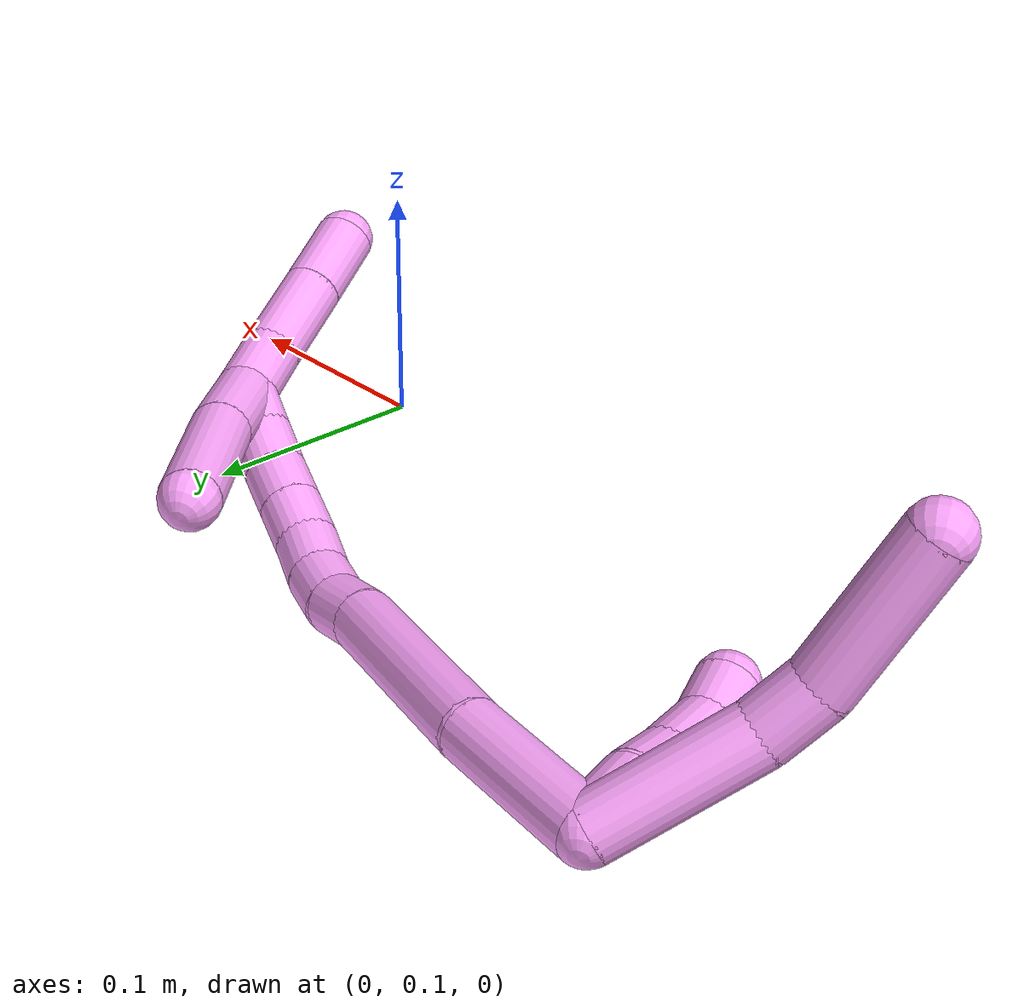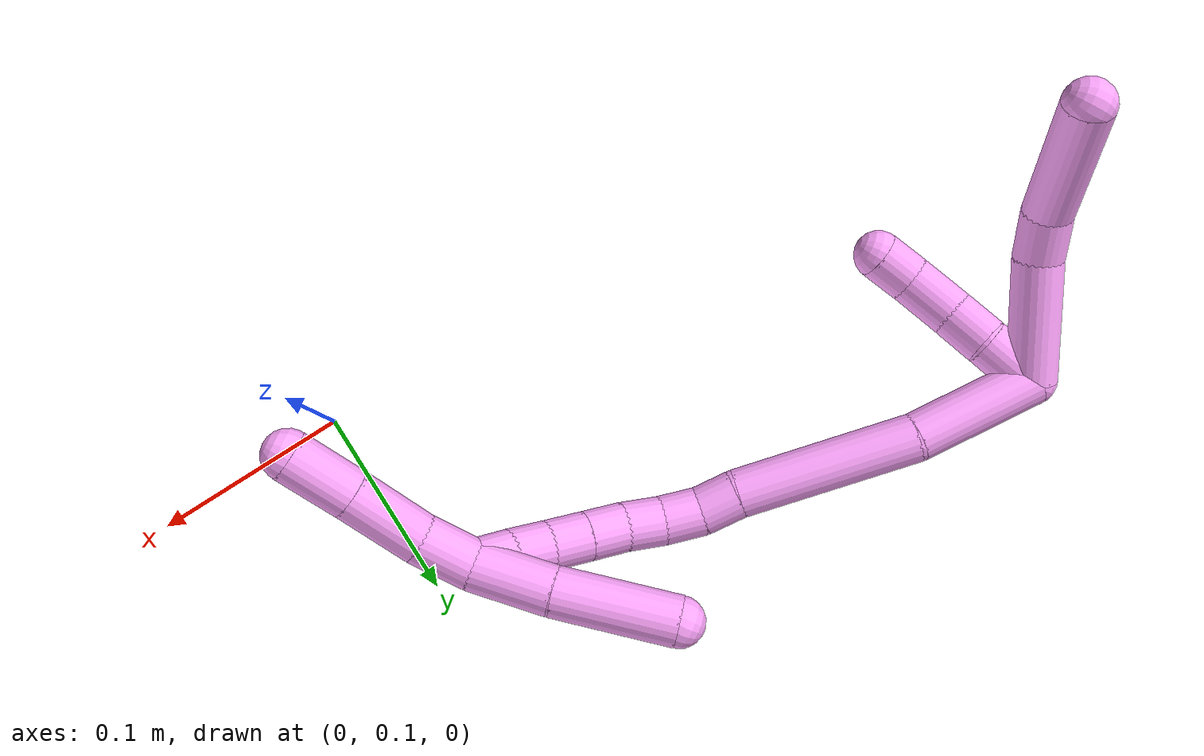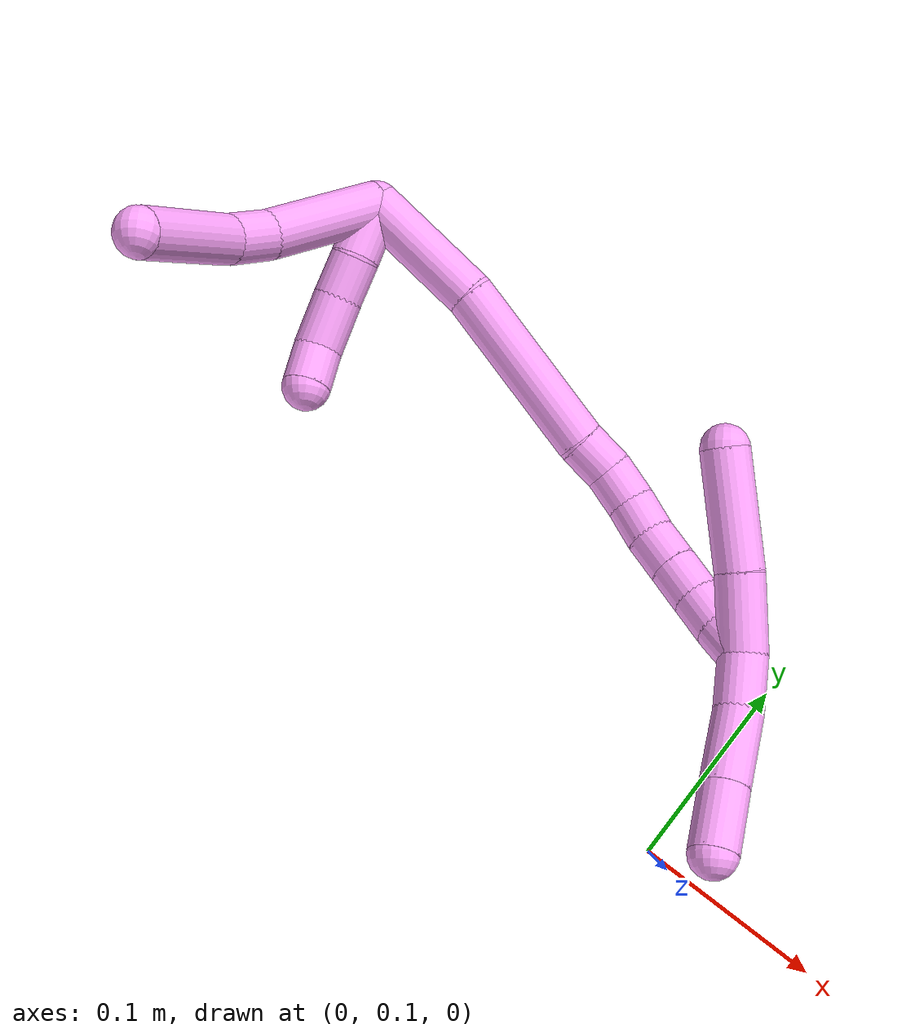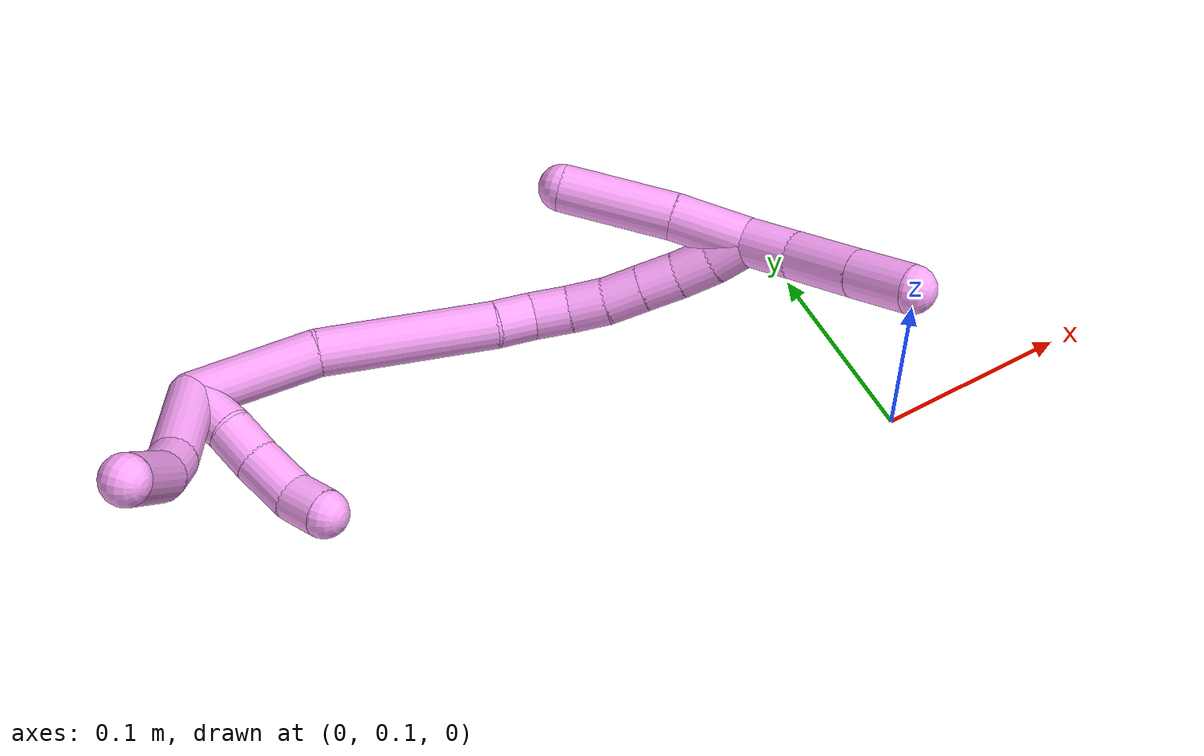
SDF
<sdf version="1.7">
 <world name="default">
  <model name="4">
   <static>0</static>
   <link name="4">
    <collision name="collision-cylinder-e_1_2_8">
     <pose>-0.027128 -0.000228 -0.016118 3.12746 -1.03464 -3.11675</pose>
     <geometry><cylinder><radius>0.0125</radius><length>0.063111</length></cylinder></geometry>
     <surface>
      <friction><ode><mu>1.16</mu><mu2>1.16</mu2><slip1>0</slip1><slip2>0</slip2></ode></friction>
      <contact><ode><kp>1e+06</kp><kd>1</kd><max_vel>0</max_vel><min_depth>0.001</min_depth></ode></contact>
     </surface>
    </collision>
    <visual name="visual-cylinder-e_1_2_8">
     <pose>-0.027128 -0.000228 -0.016118 3.12746 -1.03464 -3.11675</pose>
     <geometry><cylinder><radius>0.0125</radius><length>0.063111</length></cylinder></geometry>
     <material><ambient>1 0.65098 0.996078 1</ambient></material>
    </visual>
    <collision name="collision-cylinder-e_2_8_9">
     <pose>-0.064783 -0.003379 -0.037732 2.65274 -1.03683 -2.31725</pose>
     <geometry><cylinder><radius>0.0125</radius><length>0.024461</length></cylinder></geometry>
     <surface>
      <friction><ode><mu>1.16</mu><mu2>1.16</mu2><slip1>0</slip1><slip2>0</slip2></ode></friction>
      <contact><ode><kp>1e+06</kp><kd>1</kd><max_vel>0</max_vel><min_depth>0.001</min_depth></ode></contact>
     </surface>
    </collision>
    <visual name="visual-cylinder-e_2_8_9">
     <pose>-0.064783 -0.003379 -0.037732 2.65274 -1.03683 -2.31725</pose>
     <geometry><cylinder><radius>0.0125</radius><length>0.024461</length></cylinder></geometry>
     <material><ambient>1 0.65098 0.996078 1</ambient></material>
    </visual>
    <collision name="collision-cylinder-e_3_9_6">
     <pose>-0.099444 -0.022109 -0.055147 2.21689 -0.883757 -1.51872</pose>
     <geometry><cylinder><radius>0.0125</radius><length>0.062428</length></cylinder></geometry>
     <surface>
      <friction><ode><mu>1.16</mu><mu2>1.16</mu2><slip1>0</slip1><slip2>0</slip2></ode></friction>
      <contact><ode><kp>1e+06</kp><kd>1</kd><max_vel>0</max_vel><min_depth>0.001</min_depth></ode></contact>
     </surface>
    </collision>
    <visual name="visual-cylinder-e_3_9_6">
     <pose>-0.099444 -0.022109 -0.055147 2.21689 -0.883757 -1.51872</pose>
     <geometry><cylinder><radius>0.0125</radius><length>0.062428</length></cylinder></geometry>
     <material><ambient>1 0.65098 0.996078 1</ambient></material>
    </visual>
    <collision name="collision-cylinder-e_1_2_10">
     <pose>-0.002747 0.00441 -0.013715 -2.83047 -0.188382 1.08433</pose>
     <geometry><cylinder><radius>0.0125</radius><length>0.029333</length></cylinder></geometry>
     <surface>
      <friction><ode><mu>1.16</mu><mu2>1.16</mu2><slip1>0</slip1><slip2>0</slip2></ode></friction>
      <contact><ode><kp>1e+06</kp><kd>1</kd><max_vel>0</max_vel><min_depth>0.001</min_depth></ode></contact>
     </surface>
    </collision>
    <visual name="visual-cylinder-e_1_2_10">
     <pose>-0.002747 0.00441 -0.013715 -2.83047 -0.188382 1.08433</pose>
     <geometry><cylinder><radius>0.0125</radius><length>0.029333</length></cylinder></geometry>
     <material><ambient>1 0.65098 0.996078 1</ambient></material>
    </visual>
    <collision name="collision-cylinder-e_2_10_11">
     <pose>-0.007266 0.013854 -0.036994 -2.65715 -0.162569 0.636982</pose>
     <geometry><cylinder><radius>0.0125</radius><length>0.021904</length></cylinder></geometry>
     <surface>
      <friction><ode><mu>1.16</mu><mu2>1.16</mu2><slip1>0</slip1><slip2>0</slip2></ode></friction>
      <contact><ode><kp>1e+06</kp><kd>1</kd><max_vel>0</max_vel><min_depth>0.001</min_depth></ode></contact>
     </surface>
    </collision>
    <visual name="visual-cylinder-e_2_10_11">
     <pose>-0.007266 0.013854 -0.036994 -2.65715 -0.162569 0.636982</pose>
     <geometry><cylinder><radius>0.0125</radius><length>0.021904</length></cylinder></geometry>
     <material><ambient>1 0.65098 0.996078 1</ambient></material>
    </visual>
    <collision name="collision-cylinder-e_3_11_12">
     <pose>-0.011236 0.024171 -0.059287 -2.74811 -0.158112 0.756621</pose>
     <geometry><cylinder><radius>0.0125</radius><length>0.027912</length></cylinder></geometry>
     <surface>
      <friction><ode><mu>1.16</mu><mu2>1.16</mu2><slip1>0</slip1><slip2>0</slip2></ode></friction>
      <contact><ode><kp>1e+06</kp><kd>1</kd><max_vel>0</max_vel><min_depth>0.001</min_depth></ode></contact>
     </surface>
    </collision>
    <visual name="visual-cylinder-e_3_11_12">
     <pose>-0.011236 0.024171 -0.059287 -2.74811 -0.158112 0.756621</pose>
     <geometry><cylinder><radius>0.0125</radius><length>0.027912</length></cylinder></geometry>
     <material><ambient>1 0.65098 0.996078 1</ambient></material>
    </visual>
    <collision name="collision-cylinder-e_4_12_5">
     <pose>-0.015136 0.029976 -0.082288 -3.09097 -0.164096 2.54431</pose>
     <geometry><cylinder><radius>0.0125</radius><length>0.020851</length></cylinder></geometry>
     <surface>
      <friction><ode><mu>1.16</mu><mu2>1.16</mu2><slip1>0</slip1><slip2>0</slip2></ode></friction>
      <contact><ode><kp>1e+06</kp><kd>1</kd><max_vel>0</max_vel><min_depth>0.001</min_depth></ode></contact>
     </surface>
    </collision>
    <visual name="visual-cylinder-e_4_12_5">
     <pose>-0.015136 0.029976 -0.082288 -3.09097 -0.164096 2.54431</pose>
     <geometry><cylinder><radius>0.0125</radius><length>0.020851</length></cylinder></geometry>
     <material><ambient>1 0.65098 0.996078 1</ambient></material>
    </visual>
    <collision name="collision-cylinder-e_1_2_13">
     <pose>0.024987 -0.006396 -0.020879 2.84434 0.85259 2.50465</pose>
     <geometry><cylinder><radius>0.0125</radius><length>0.066368</length></cylinder></geometry>
     <surface>
      <friction><ode><mu>1.16</mu><mu2>1.16</mu2><slip1>0</slip1><slip2>0</slip2></ode></friction>
      <contact><ode><kp>1e+06</kp><kd>1</kd><max_vel>0</max_vel><min_depth>0.001</min_depth></ode></contact>
     </surface>
    </collision>
    <visual name="visual-cylinder-e_1_2_13">
     <pose>0.024987 -0.006396 -0.020879 2.84434 0.85259 2.50465</pose>
     <geometry><cylinder><radius>0.0125</radius><length>0.066368</length></cylinder></geometry>
     <material><ambient>1 0.65098 0.996078 1</ambient></material>
    </visual>
    <collision name="collision-cylinder-e_2_13_14">
     <pose>0.082445 -0.014848 -0.074527 3.07892 0.779827 2.98934</pose>
     <geometry><cylinder><radius>0.0125</radius><length>0.092356</length></cylinder></geometry>
     <surface>
      <friction><ode><mu>1.16</mu><mu2>1.16</mu2><slip1>0</slip1><slip2>0</slip2></ode></friction>
      <contact><ode><kp>1e+06</kp><kd>1</kd><max_vel>0</max_vel><min_depth>0.001</min_depth></ode></contact>
     </surface>
    </collision>
    <visual name="visual-cylinder-e_2_13_14">
     <pose>0.082445 -0.014848 -0.074527 3.07892 0.779827 2.98934</pose>
     <geometry><cylinder><radius>0.0125</radius><length>0.092356</length></cylinder></geometry>
     <material><ambient>1 0.65098 0.996078 1</ambient></material>
    </visual>
    <collision name="collision-cylinder-e_3_14_15">
     <pose>0.123142 -0.017268 -0.113404 3.08207 0.931391 3.02325</pose>
     <geometry><cylinder><radius>0.0125</radius><length>0.020506</length></cylinder></geometry>
     <surface>
      <friction><ode><mu>1.16</mu><mu2>1.16</mu2><slip1>0</slip1><slip2>0</slip2></ode></friction>
      <contact><ode><kp>1e+06</kp><kd>1</kd><max_vel>0</max_vel><min_depth>0.001</min_depth></ode></contact>
     </surface>
    </collision>
    <visual name="visual-cylinder-e_3_14_15">
     <pose>0.123142 -0.017268 -0.113404 3.08207 0.931391 3.02325</pose>
     <geometry><cylinder><radius>0.0125</radius><length>0.020506</length></cylinder></geometry>
     <material><ambient>1 0.65098 0.996078 1</ambient></material>
    </visual>
    <collision name="collision-cylinder-e_4_15_16">
     <pose>0.137598 -0.019022 -0.127453 2.96834 0.657719 2.64321</pose>
     <geometry><cylinder><radius>0.0125</radius><length>0.020377</length></cylinder></geometry>
     <surface>
      <friction><ode><mu>1.16</mu><mu2>1.16</mu2><slip1>0</slip1><slip2>0</slip2></ode></friction>
      <contact><ode><kp>1e+06</kp><kd>1</kd><max_vel>0</max_vel><min_depth>0.001</min_depth></ode></contact>
     </surface>
    </collision>
    <visual name="visual-cylinder-e_4_15_16">
     <pose>0.137598 -0.019022 -0.127453 2.96834 0.657719 2.64321</pose>
     <geometry><cylinder><radius>0.0125</radius><length>0.020377</length></cylinder></geometry>
     <material><ambient>1 0.65098 0.996078 1</ambient></material>
    </visual>
    <collision name="collision-cylinder-e_5_16_17">
     <pose>0.148606 -0.022904 -0.14382 2.854 0.498286 2.10683</pose>
     <geometry><cylinder><radius>0.0125</radius><length>0.020003</length></cylinder></geometry>
     <surface>
      <friction><ode><mu>1.16</mu><mu2>1.16</mu2><slip1>0</slip1><slip2>0</slip2></ode></friction>
      <contact><ode><kp>1e+06</kp><kd>1</kd><max_vel>0</max_vel><min_depth>0.001</min_depth></ode></contact>
     </surface>
    </collision>
    <visual name="visual-cylinder-e_5_16_17">
     <pose>0.148606 -0.022904 -0.14382 2.854 0.498286 2.10683</pose>
     <geometry><cylinder><radius>0.0125</radius><length>0.020003</length></cylinder></geometry>
     <material><ambient>1 0.65098 0.996078 1</ambient></material>
    </visual>
    <collision name="collision-cylinder-e_6_17_18">
     <pose>0.158124 -0.029216 -0.160205 2.69417 0.492504 1.67025</pose>
     <geometry><cylinder><radius>0.0125</radius><length>0.020041</length></cylinder></geometry>
     <surface>
      <friction><ode><mu>1.16</mu><mu2>1.16</mu2><slip1>0</slip1><slip2>0</slip2></ode></friction>
      <contact><ode><kp>1e+06</kp><kd>1</kd><max_vel>0</max_vel><min_depth>0.001</min_depth></ode></contact>
     </surface>
    </collision>
    <visual name="visual-cylinder-e_6_17_18">
     <pose>0.158124 -0.029216 -0.160205 2.69417 0.492504 1.67025</pose>
     <geometry><cylinder><radius>0.0125</radius><length>0.020041</length></cylinder></geometry>
     <material><ambient>1 0.65098 0.996078 1</ambient></material>
    </visual>
    <collision name="collision-cylinder-e_7_18_19">
     <pose>0.16759 -0.036782 -0.176145 2.70272 0.492268 1.68957</pose>
     <geometry><cylinder><radius>0.0125</radius><length>0.020006</length></cylinder></geometry>
     <surface>
      <friction><ode><mu>1.16</mu><mu2>1.16</mu2><slip1>0</slip1><slip2>0</slip2></ode></friction>
      <contact><ode><kp>1e+06</kp><kd>1</kd><max_vel>0</max_vel><min_depth>0.001</min_depth></ode></contact>
     </surface>
    </collision>
    <visual name="visual-cylinder-e_7_18_19">
     <pose>0.16759 -0.036782 -0.176145 2.70272 0.492268 1.68957</pose>
     <geometry><cylinder><radius>0.0125</radius><length>0.020006</length></cylinder></geometry>
     <material><ambient>1 0.65098 0.996078 1</ambient></material>
    </visual>
    <collision name="collision-cylinder-e_8_19_20">
     <pose>0.176429 -0.045078 -0.192105 2.62329 0.420783 1.35618</pose>
     <geometry><cylinder><radius>0.0125</radius><length>0.020129</length></cylinder></geometry>
     <surface>
      <friction><ode><mu>1.16</mu><mu2>1.16</mu2><slip1>0</slip1><slip2>0</slip2></ode></friction>
      <contact><ode><kp>1e+06</kp><kd>1</kd><max_vel>0</max_vel><min_depth>0.001</min_depth></ode></contact>
     </surface>
    </collision>
    <visual name="visual-cylinder-e_8_19_20">
     <pose>0.176429 -0.045078 -0.192105 2.62329 0.420783 1.35618</pose>
     <geometry><cylinder><radius>0.0125</radius><length>0.020129</length></cylinder></geometry>
     <material><ambient>1 0.65098 0.996078 1</ambient></material>
    </visual>
    <collision name="collision-cylinder-e_9_20_1">
     <pose>0.184014 -0.055422 -0.207604 2.48517 0.350931 0.96003</pose>
     <geometry><cylinder><radius>0.0125</radius><length>0.020215</length></cylinder></geometry>
     <surface>
      <friction><ode><mu>1.16</mu><mu2>1.16</mu2><slip1>0</slip1><slip2>0</slip2></ode></friction>
      <contact><ode><kp>1e+06</kp><kd>1</kd><max_vel>0</max_vel><min_depth>0.001</min_depth></ode></contact>
     </surface>
    </collision>
    <visual name="visual-cylinder-e_9_20_1">
     <pose>0.184014 -0.055422 -0.207604 2.48517 0.350931 0.96003</pose>
     <geometry><cylinder><radius>0.0125</radius><length>0.020215</length></cylinder></geometry>
     <material><ambient>1 0.65098 0.996078 1</ambient></material>
    </visual>
    <collision name="collision-cylinder-e_1_1_21">
     <pose>0.18681 -0.061063 -0.229274 -3.13089 -0.047925 2.70212</pose>
     <geometry><cylinder><radius>0.0125</radius><length>0.028336</length></cylinder></geometry>
     <surface>
      <friction><ode><mu>1.16</mu><mu2>1.16</mu2><slip1>0</slip1><slip2>0</slip2></ode></friction>
      <contact><ode><kp>1e+06</kp><kd>1</kd><max_vel>0</max_vel><min_depth>0.001</min_depth></ode></contact>
     </surface>
    </collision>
    <visual name="visual-cylinder-e_1_1_21">
     <pose>0.18681 -0.061063 -0.229274 -3.13089 -0.047925 2.70212</pose>
     <geometry><cylinder><radius>0.0125</radius><length>0.028336</length></cylinder></geometry>
     <material><ambient>1 0.65098 0.996078 1</ambient></material>
    </visual>
    <collision name="collision-cylinder-e_2_21_22">
     <pose>0.182151 -0.062367 -0.262301 3.06462 -0.207222 -2.43232</pose>
     <geometry><cylinder><radius>0.0125</radius><length>0.038694</length></cylinder></geometry>
     <surface>
      <friction><ode><mu>1.16</mu><mu2>1.16</mu2><slip1>0</slip1><slip2>0</slip2></ode></friction>
      <contact><ode><kp>1e+06</kp><kd>1</kd><max_vel>0</max_vel><min_depth>0.001</min_depth></ode></contact>
     </surface>
    </collision>
    <visual name="visual-cylinder-e_2_21_22">
     <pose>0.182151 -0.062367 -0.262301 3.06462 -0.207222 -2.43232</pose>
     <geometry><cylinder><radius>0.0125</radius><length>0.038694</length></cylinder></geometry>
     <material><ambient>1 0.65098 0.996078 1</ambient></material>
    </visual>
    <collision name="collision-cylinder-e_3_22_4">
     <pose>0.175108 -0.065046 -0.29733 3.06601 -0.186835 -2.37445</pose>
     <geometry><cylinder><radius>0.0125</radius><length>0.032971</length></cylinder></geometry>
     <surface>
      <friction><ode><mu>1.16</mu><mu2>1.16</mu2><slip1>0</slip1><slip2>0</slip2></ode></friction>
      <contact><ode><kp>1e+06</kp><kd>1</kd><max_vel>0</max_vel><min_depth>0.001</min_depth></ode></contact>
     </surface>
    </collision>
    <visual name="visual-cylinder-e_3_22_4">
     <pose>0.175108 -0.065046 -0.29733 3.06601 -0.186835 -2.37445</pose>
     <geometry><cylinder><radius>0.0125</radius><length>0.032971</length></cylinder></geometry>
     <material><ambient>1 0.65098 0.996078 1</ambient></material>
    </visual>
    <collision name="collision-cylinder-e_1_1_23">
     <pose>0.183225 -0.06534 -0.196158 0.214176 -0.216279 -0.02334</pose>
     <geometry><cylinder><radius>0.0125</radius><length>0.039742</length></cylinder></geometry>
     <surface>
      <friction><ode><mu>1.16</mu><mu2>1.16</mu2><slip1>0</slip1><slip2>0</slip2></ode></friction>
      <contact><ode><kp>1e+06</kp><kd>1</kd><max_vel>0</max_vel><min_depth>0.001</min_depth></ode></contact>
     </surface>
    </collision>
    <visual name="visual-cylinder-e_1_1_23">
     <pose>0.183225 -0.06534 -0.196158 0.214176 -0.216279 -0.02334</pose>
     <geometry><cylinder><radius>0.0125</radius><length>0.039742</length></cylinder></geometry>
     <material><ambient>1 0.65098 0.996078 1</ambient></material>
    </visual>
    <collision name="collision-cylinder-e_2_23_3">
     <pose>0.170702 -0.074148 -0.1486 0.16235 -0.277664 -0.022734</pose>
     <geometry><cylinder><radius>0.0125</radius><length>0.060258</length></cylinder></geometry>
     <surface>
      <friction><ode><mu>1.16</mu><mu2>1.16</mu2><slip1>0</slip1><slip2>0</slip2></ode></friction>
      <contact><ode><kp>1e+06</kp><kd>1</kd><max_vel>0</max_vel><min_depth>0.001</min_depth></ode></contact>
     </surface>
    </collision>
    <visual name="visual-cylinder-e_2_23_3">
     <pose>0.170702 -0.074148 -0.1486 0.16235 -0.277664 -0.022734</pose>
     <geometry><cylinder><radius>0.0125</radius><length>0.060258</length></cylinder></geometry>
     <material><ambient>1 0.65098 0.996078 1</ambient></material>
    </visual>
    <collision name="collision-sphere-3">
     <pose>0.162443 -0.078832 -0.120006 0 -0 0</pose>
     <geometry><sphere><radius>0.0125</radius></sphere></geometry>
     <surface>
      <friction><ode><mu>1.16</mu><mu2>1.16</mu2><slip1>0</slip1><slip2>0</slip2></ode></friction>
      <contact><ode><kp>1e+06</kp><kd>1</kd><max_vel>0</max_vel><min_depth>0.001</min_depth></ode></contact>
     </surface>
    </collision>
    <visual name="visual-sphere-3">
     <pose>0.162443 -0.078832 -0.120006 0 -0 0</pose>
     <geometry><sphere><radius>0.0125</radius></sphere></geometry>
     <material><ambient>1 0.65098 0.996078 1</ambient></material>
    </visual>
    <collision name="collision-sphere-23">
     <pose>0.17896 -0.069465 -0.177194 0 -0 0</pose>
     <geometry><sphere><radius>0.0125</radius></sphere></geometry>
     <surface>
      <friction><ode><mu>1.16</mu><mu2>1.16</mu2><slip1>0</slip1><slip2>0</slip2></ode></friction>
      <contact><ode><kp>1e+06</kp><kd>1</kd><max_vel>0</max_vel><min_depth>0.001</min_depth></ode></contact>
     </surface>
    </collision>
    <visual name="visual-sphere-23">
     <pose>0.17896 -0.069465 -0.177194 0 -0 0</pose>
     <geometry><sphere><radius>0.0125</radius></sphere></geometry>
     <material><ambient>1 0.65098 0.996078 1</ambient></material>
    </visual>
    <collision name="collision-sphere-4">
     <pose>0.172046 -0.06627 -0.313483 0 -0 0</pose>
     <geometry><sphere><radius>0.0125</radius></sphere></geometry>
     <surface>
      <friction><ode><mu>1.16</mu><mu2>1.16</mu2><slip1>0</slip1><slip2>0</slip2></ode></friction>
      <contact><ode><kp>1e+06</kp><kd>1</kd><max_vel>0</max_vel><min_depth>0.001</min_depth></ode></contact>
     </surface>
    </collision>
    <visual name="visual-sphere-4">
     <pose>0.172046 -0.06627 -0.313483 0 -0 0</pose>
     <geometry><sphere><radius>0.0125</radius></sphere></geometry>
     <material><ambient>1 0.65098 0.996078 1</ambient></material>
    </visual>
    <collision name="collision-sphere-22">
     <pose>0.178171 -0.063823 -0.281178 0 -0 0</pose>
     <geometry><sphere><radius>0.0125</radius></sphere></geometry>
     <surface>
      <friction><ode><mu>1.16</mu><mu2>1.16</mu2><slip1>0</slip1><slip2>0</slip2></ode></friction>
      <contact><ode><kp>1e+06</kp><kd>1</kd><max_vel>0</max_vel><min_depth>0.001</min_depth></ode></contact>
     </surface>
    </collision>
    <visual name="visual-sphere-22">
     <pose>0.178171 -0.063823 -0.281178 0 -0 0</pose>
     <geometry><sphere><radius>0.0125</radius></sphere></geometry>
     <material><ambient>1 0.65098 0.996078 1</ambient></material>
    </visual>
    <collision name="collision-sphere-21">
     <pose>0.186131 -0.060912 -0.243424 0 -0 0</pose>
     <geometry><sphere><radius>0.0125</radius></sphere></geometry>
     <surface>
      <friction><ode><mu>1.16</mu><mu2>1.16</mu2><slip1>0</slip1><slip2>0</slip2></ode></friction>
      <contact><ode><kp>1e+06</kp><kd>1</kd><max_vel>0</max_vel><min_depth>0.001</min_depth></ode></contact>
     </surface>
    </collision>
    <visual name="visual-sphere-21">
     <pose>0.186131 -0.060912 -0.243424 0 -0 0</pose>
     <geometry><sphere><radius>0.0125</radius></sphere></geometry>
     <material><ambient>1 0.65098 0.996078 1</ambient></material>
    </visual>
    <collision name="collision-sphere-1">
     <pose>0.187489 -0.061215 -0.215123 0 -0 0</pose>
     <geometry><sphere><radius>0.0125</radius></sphere></geometry>
     <surface>
      <friction><ode><mu>1.16</mu><mu2>1.16</mu2><slip1>0</slip1><slip2>0</slip2></ode></friction>
      <contact><ode><kp>1e+06</kp><kd>1</kd><max_vel>0</max_vel><min_depth>0.001</min_depth></ode></contact>
     </surface>
    </collision>
    <visual name="visual-sphere-1">
     <pose>0.187489 -0.061215 -0.215123 0 -0 0</pose>
     <geometry><sphere><radius>0.0125</radius></sphere></geometry>
     <material><ambient>1 0.65098 0.996078 1</ambient></material>
    </visual>
    <collision name="collision-sphere-11">
     <pose>-0.009038 0.018887 -0.046558 0 -0 0</pose>
     <geometry><sphere><radius>0.0125</radius></sphere></geometry>
     <surface>
      <friction><ode><mu>1.16</mu><mu2>1.16</mu2><slip1>0</slip1><slip2>0</slip2></ode></friction>
      <contact><ode><kp>1e+06</kp><kd>1</kd><max_vel>0</max_vel><min_depth>0.001</min_depth></ode></contact>
     </surface>
    </collision>
    <visual name="visual-sphere-11">
     <pose>-0.009038 0.018887 -0.046558 0 -0 0</pose>
     <geometry><sphere><radius>0.0125</radius></sphere></geometry>
     <material><ambient>1 0.65098 0.996078 1</ambient></material>
    </visual>
    <collision name="collision-sphere-10">
     <pose>-0.005493 0.008821 -0.027431 0 -0 0</pose>
     <geometry><sphere><radius>0.0125</radius></sphere></geometry>
     <surface>
      <friction><ode><mu>1.16</mu><mu2>1.16</mu2><slip1>0</slip1><slip2>0</slip2></ode></friction>
      <contact><ode><kp>1e+06</kp><kd>1</kd><max_vel>0</max_vel><min_depth>0.001</min_depth></ode></contact>
     </surface>
    </collision>
    <visual name="visual-sphere-10">
     <pose>-0.005493 0.008821 -0.027431 0 -0 0</pose>
     <geometry><sphere><radius>0.0125</radius></sphere></geometry>
     <material><ambient>1 0.65098 0.996078 1</ambient></material>
    </visual>
    <collision name="collision-sphere-6">
     <pose>-0.123576 -0.037916 -0.067067 0 -0 0</pose>
     <geometry><sphere><radius>0.0125</radius></sphere></geometry>
     <surface>
      <friction><ode><mu>1.16</mu><mu2>1.16</mu2><slip1>0</slip1><slip2>0</slip2></ode></friction>
      <contact><ode><kp>1e+06</kp><kd>1</kd><max_vel>0</max_vel><min_depth>0.001</min_depth></ode></contact>
     </surface>
    </collision>
    <visual name="visual-sphere-6">
     <pose>-0.123576 -0.037916 -0.067067 0 -0 0</pose>
     <geometry><sphere><radius>0.0125</radius></sphere></geometry>
     <material><ambient>1 0.65098 0.996078 1</ambient></material>
    </visual>
    <collision name="collision-sphere-9">
     <pose>-0.075311 -0.006302 -0.043228 0 -0 0</pose>
     <geometry><sphere><radius>0.0125</radius></sphere></geometry>
     <surface>
      <friction><ode><mu>1.16</mu><mu2>1.16</mu2><slip1>0</slip1><slip2>0</slip2></ode></friction>
      <contact><ode><kp>1e+06</kp><kd>1</kd><max_vel>0</max_vel><min_depth>0.001</min_depth></ode></contact>
     </surface>
    </collision>
    <visual name="visual-sphere-9">
     <pose>-0.075311 -0.006302 -0.043228 0 -0 0</pose>
     <geometry><sphere><radius>0.0125</radius></sphere></geometry>
     <material><ambient>1 0.65098 0.996078 1</ambient></material>
    </visual>
    <collision name="collision-sphere-2">
     <geometry><sphere><radius>0.0125</radius></sphere></geometry>
     <surface>
      <friction><ode><mu>1.16</mu><mu2>1.16</mu2><slip1>0</slip1><slip2>0</slip2></ode></friction>
      <contact><ode><kp>1e+06</kp><kd>1</kd><max_vel>0</max_vel><min_depth>0.001</min_depth></ode></contact>
     </surface>
    </collision>
    <visual name="visual-sphere-2">
     <geometry><sphere><radius>0.0125</radius></sphere></geometry>
     <material><ambient>1 0.65098 0.996078 1</ambient></material>
    </visual>
    <collision name="collision-sphere-19">
     <pose>0.172317 -0.040527 -0.184125 0 -0 0</pose>
     <geometry><sphere><radius>0.0125</radius></sphere></geometry>
     <surface>
      <friction><ode><mu>1.16</mu><mu2>1.16</mu2><slip1>0</slip1><slip2>0</slip2></ode></friction>
      <contact><ode><kp>1e+06</kp><kd>1</kd><max_vel>0</max_vel><min_depth>0.001</min_depth></ode></contact>
     </surface>
    </collision>
    <visual name="visual-sphere-19">
     <pose>0.172317 -0.040527 -0.184125 0 -0 0</pose>
     <geometry><sphere><radius>0.0125</radius></sphere></geometry>
     <material><ambient>1 0.65098 0.996078 1</ambient></material>
    </visual>
    <collision name="collision-sphere-8">
     <pose>-0.054255 -0.000456 -0.032236 0 -0 0</pose>
     <geometry><sphere><radius>0.0125</radius></sphere></geometry>
     <surface>
      <friction><ode><mu>1.16</mu><mu2>1.16</mu2><slip1>0</slip1><slip2>0</slip2></ode></friction>
      <contact><ode><kp>1e+06</kp><kd>1</kd><max_vel>0</max_vel><min_depth>0.001</min_depth></ode></contact>
     </surface>
    </collision>
    <visual name="visual-sphere-8">
     <pose>-0.054255 -0.000456 -0.032236 0 -0 0</pose>
     <geometry><sphere><radius>0.0125</radius></sphere></geometry>
     <material><ambient>1 0.65098 0.996078 1</ambient></material>
    </visual>
    <collision name="collision-sphere-12">
     <pose>-0.013433 0.029456 -0.072016 0 -0 0</pose>
     <geometry><sphere><radius>0.0125</radius></sphere></geometry>
     <surface>
      <friction><ode><mu>1.16</mu><mu2>1.16</mu2><slip1>0</slip1><slip2>0</slip2></ode></friction>
      <contact><ode><kp>1e+06</kp><kd>1</kd><max_vel>0</max_vel><min_depth>0.001</min_depth></ode></contact>
     </surface>
    </collision>
    <visual name="visual-sphere-12">
     <pose>-0.013433 0.029456 -0.072016 0 -0 0</pose>
     <geometry><sphere><radius>0.0125</radius></sphere></geometry>
     <material><ambient>1 0.65098 0.996078 1</ambient></material>
    </visual>
    <collision name="collision-sphere-5">
     <pose>-0.01684 0.030496 -0.092561 0 -0 0</pose>
     <geometry><sphere><radius>0.0125</radius></sphere></geometry>
     <surface>
      <friction><ode><mu>1.16</mu><mu2>1.16</mu2><slip1>0</slip1><slip2>0</slip2></ode></friction>
      <contact><ode><kp>1e+06</kp><kd>1</kd><max_vel>0</max_vel><min_depth>0.001</min_depth></ode></contact>
     </surface>
    </collision>
    <visual name="visual-sphere-5">
     <pose>-0.01684 0.030496 -0.092561 0 -0 0</pose>
     <geometry><sphere><radius>0.0125</radius></sphere></geometry>
     <material><ambient>1 0.65098 0.996078 1</ambient></material>
    </visual>
    <collision name="collision-sphere-13">
     <pose>0.049974 -0.012791 -0.041757 0 -0 0</pose>
     <geometry><sphere><radius>0.0125</radius></sphere></geometry>
     <surface>
      <friction><ode><mu>1.16</mu><mu2>1.16</mu2><slip1>0</slip1><slip2>0</slip2></ode></friction>
      <contact><ode><kp>1e+06</kp><kd>1</kd><max_vel>0</max_vel><min_depth>0.001</min_depth></ode></contact>
     </surface>
    </collision>
    <visual name="visual-sphere-13">
     <pose>0.049974 -0.012791 -0.041757 0 -0 0</pose>
     <geometry><sphere><radius>0.0125</radius></sphere></geometry>
     <material><ambient>1 0.65098 0.996078 1</ambient></material>
    </visual>
    <collision name="collision-sphere-14">
     <pose>0.114915 -0.016904 -0.107297 0 -0 0</pose>
     <geometry><sphere><radius>0.0125</radius></sphere></geometry>
     <surface>
      <friction><ode><mu>1.16</mu><mu2>1.16</mu2><slip1>0</slip1><slip2>0</slip2></ode></friction>
      <contact><ode><kp>1e+06</kp><kd>1</kd><max_vel>0</max_vel><min_depth>0.001</min_depth></ode></contact>
     </surface>
    </collision>
    <visual name="visual-sphere-14">
     <pose>0.114915 -0.016904 -0.107297 0 -0 0</pose>
     <geometry><sphere><radius>0.0125</radius></sphere></geometry>
     <material><ambient>1 0.65098 0.996078 1</ambient></material>
    </visual>
    <collision name="collision-sphere-15">
     <pose>0.13137 -0.017632 -0.119511 0 -0 0</pose>
     <geometry><sphere><radius>0.0125</radius></sphere></geometry>
     <surface>
      <friction><ode><mu>1.16</mu><mu2>1.16</mu2><slip1>0</slip1><slip2>0</slip2></ode></friction>
      <contact><ode><kp>1e+06</kp><kd>1</kd><max_vel>0</max_vel><min_depth>0.001</min_depth></ode></contact>
     </surface>
    </collision>
    <visual name="visual-sphere-15">
     <pose>0.13137 -0.017632 -0.119511 0 -0 0</pose>
     <geometry><sphere><radius>0.0125</radius></sphere></geometry>
     <material><ambient>1 0.65098 0.996078 1</ambient></material>
    </visual>
    <collision name="collision-sphere-16">
     <pose>0.143826 -0.020412 -0.135395 0 -0 0</pose>
     <geometry><sphere><radius>0.0125</radius></sphere></geometry>
     <surface>
      <friction><ode><mu>1.16</mu><mu2>1.16</mu2><slip1>0</slip1><slip2>0</slip2></ode></friction>
      <contact><ode><kp>1e+06</kp><kd>1</kd><max_vel>0</max_vel><min_depth>0.001</min_depth></ode></contact>
     </surface>
    </collision>
    <visual name="visual-sphere-16">
     <pose>0.143826 -0.020412 -0.135395 0 -0 0</pose>
     <geometry><sphere><radius>0.0125</radius></sphere></geometry>
     <material><ambient>1 0.65098 0.996078 1</ambient></material>
    </visual>
    <collision name="collision-sphere-17">
     <pose>0.153386 -0.025396 -0.152245 0 -0 0</pose>
     <geometry><sphere><radius>0.0125</radius></sphere></geometry>
     <surface>
      <friction><ode><mu>1.16</mu><mu2>1.16</mu2><slip1>0</slip1><slip2>0</slip2></ode></friction>
      <contact><ode><kp>1e+06</kp><kd>1</kd><max_vel>0</max_vel><min_depth>0.001</min_depth></ode></contact>
     </surface>
    </collision>
    <visual name="visual-sphere-17">
     <pose>0.153386 -0.025396 -0.152245 0 -0 0</pose>
     <geometry><sphere><radius>0.0125</radius></sphere></geometry>
     <material><ambient>1 0.65098 0.996078 1</ambient></material>
    </visual>
    <collision name="collision-sphere-18">
     <pose>0.162862 -0.033036 -0.168166 0 -0 0</pose>
     <geometry><sphere><radius>0.0125</radius></sphere></geometry>
     <surface>
      <friction><ode><mu>1.16</mu><mu2>1.16</mu2><slip1>0</slip1><slip2>0</slip2></ode></friction>
      <contact><ode><kp>1e+06</kp><kd>1</kd><max_vel>0</max_vel><min_depth>0.001</min_depth></ode></contact>
     </surface>
    </collision>
    <visual name="visual-sphere-18">
     <pose>0.162862 -0.033036 -0.168166 0 -0 0</pose>
     <geometry><sphere><radius>0.0125</radius></sphere></geometry>
     <material><ambient>1 0.65098 0.996078 1</ambient></material>
    </visual>
    <collision name="collision-sphere-20">
     <pose>0.18054 -0.049629 -0.200085 0 -0 0</pose>
     <geometry><sphere><radius>0.0125</radius></sphere></geometry>
     <surface>
      <friction><ode><mu>1.16</mu><mu2>1.16</mu2><slip1>0</slip1><slip2>0</slip2></ode></friction>
      <contact><ode><kp>1e+06</kp><kd>1</kd><max_vel>0</max_vel><min_depth>0.001</min_depth></ode></contact>
     </surface>
    </collision>
    <visual name="visual-sphere-20">
     <pose>0.18054 -0.049629 -0.200085 0 -0 0</pose>
     <geometry><sphere><radius>0.0125</radius></sphere></geometry>
     <material><ambient>1 0.65098 0.996078 1</ambient></material>
    </visual>
    <inertial>
     <pose>0.075568 -0.025923 -0.112042 0 -0 0</pose>
     <mass>0.75</mass>
     <inertia>
      <ixx>-4.7e-05</ixx>
      <ixy>0</ixy>
      <ixz>0</ixz>
      <iyy>0.000173</iyy>
      <iyz>0</iyz>
      <izz>-2.7e-05</izz>
     </inertia>
    </inertial>
   </link>
   <pose>-0.307274 0.275793 0.020322 -1.81906 0.403406 0.477831</pose>
  </model>
 </world>
</sdf>
